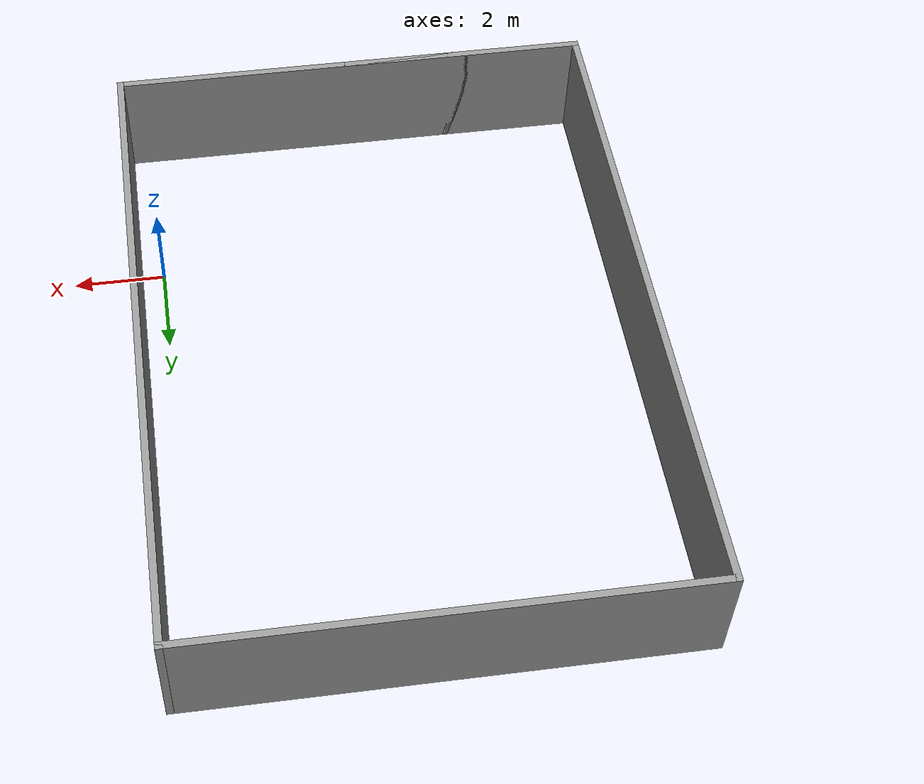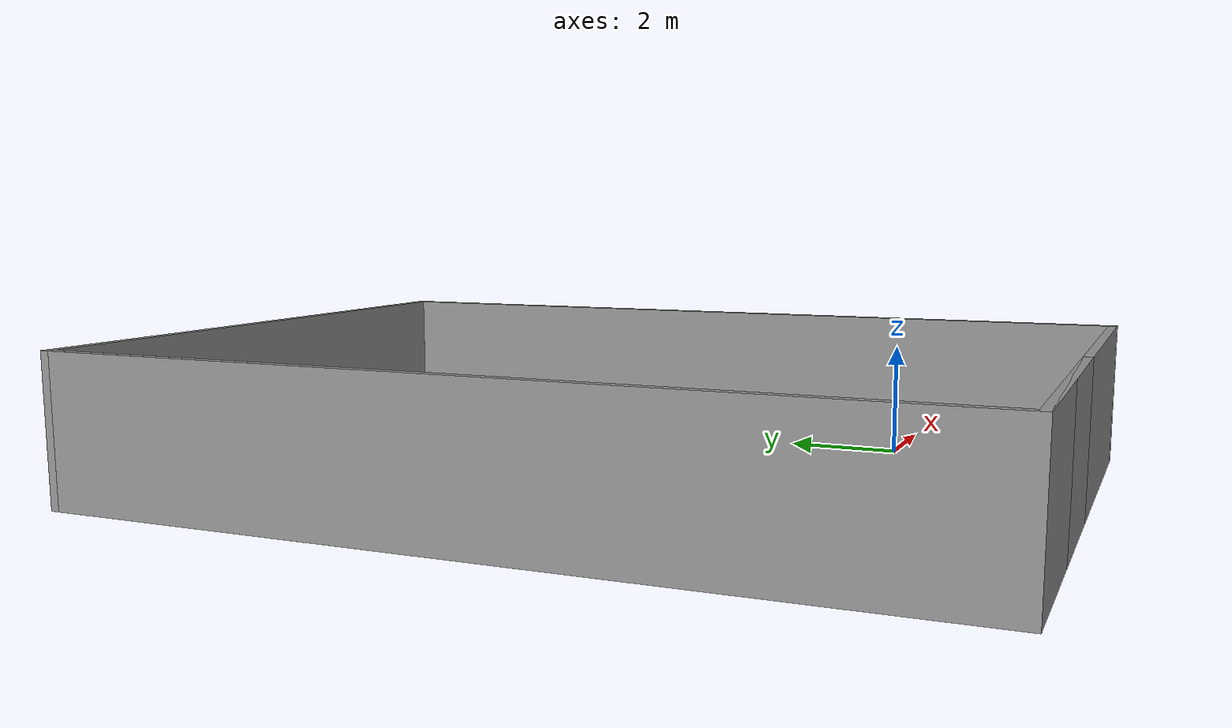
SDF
<?xml version='1.0'?>
<sdf version='1.6'>
  <model name='Untitled'>
    <pose frame=''>-4.74 3.52 0 0 -0 0</pose>
    <link name='Wall_0'>
      <collision name='Wall_0_Collision'>
        <geometry>
          <box>
            <size>5.5 0.15 2.5</size>
          </box>
        </geometry>
        <pose frame=''>0 0 1.25 0 -0 0</pose>
      </collision>
      <visual name='Wall_0_Visual'>
        <pose frame=''>0 0 1.25 0 -0 0</pose>
        <geometry>
          <box>
            <size>5.5 0.15 2.5</size>
          </box>
        </geometry>
        <material>
          <script>
            <uri>file://media/materials/scripts/gazebo.material</uri>
            <name>Gazebo/Grey</name>
          </script>
          <ambient>1 1 1 1</ambient>
        </material>
        <meta>
          <layer>0</layer>
        </meta>
      </visual>
      <pose frame=''>-2.625 -7.3 0 0 -0 3.14159</pose>
    </link>
    <link name='Wall_1'>
      <collision name='Wall_1_Collision'>
        <geometry>
          <box>
            <size>10.75 0.15 2.5</size>
          </box>
        </geometry>
        <pose frame=''>0 0 1.25 0 -0 0</pose>
      </collision>
      <visual name='Wall_1_Visual'>
        <pose frame=''>0 0 1.25 0 -0 0</pose>
        <geometry>
          <box>
            <size>10.75 0.15 2.5</size>
          </box>
        </geometry>
        <material>
          <script>
            <uri>file://media/materials/scripts/gazebo.material</uri>
            <name>Gazebo/Grey</name>
          </script>
          <ambient>1 1 1 1</ambient>
        </material>
        <meta>
          <layer>0</layer>
        </meta>
      </visual>
      <pose frame=''>0 -7.3 0 0 -0 0</pose>
    </link>
    <link name='Wall_2'>
      <collision name='Wall_2_Collision'>
        <geometry>
          <box>
            <size>14.75 0.15 2.5</size>
          </box>
        </geometry>
        <pose frame=''>0 0 1.25 0 -0 0</pose>
      </collision>
      <visual name='Wall_2_Visual'>
        <pose frame=''>0 0 1.25 0 -0 0</pose>
        <geometry>
          <box>
            <size>14.75 0.15 2.5</size>
          </box>
        </geometry>
        <material>
          <script>
            <uri>file://media/materials/scripts/gazebo.material</uri>
            <name>Gazebo/Grey</name>
          </script>
          <ambient>1 1 1 1</ambient>
        </material>
        <meta>
          <layer>0</layer>
        </meta>
      </visual>
      <pose frame=''>5.3 0 0 0 -0 1.5708</pose>
    </link>
    <link name='Wall_3'>
      <collision name='Wall_3_Collision'>
        <geometry>
          <box>
            <size>10.75 0.15 2.5</size>
          </box>
        </geometry>
        <pose frame=''>0 0 1.25 0 -0 0</pose>
      </collision>
      <visual name='Wall_3_Visual'>
        <pose frame=''>0 0 1.25 0 -0 0</pose>
        <geometry>
          <box>
            <size>10.75 0.15 2.5</size>
          </box>
        </geometry>
        <material>
          <script>
            <uri>file://media/materials/scripts/gazebo.material</uri>
            <name>Gazebo/Grey</name>
          </script>
          <ambient>1 1 1 1</ambient>
        </material>
        <meta>
          <layer>0</layer>
        </meta>
      </visual>
      <pose frame=''>0 7.3 0 0 -0 3.14159</pose>
    </link>
    <link name='Wall_4'>
      <collision name='Wall_4_Collision'>
        <geometry>
          <box>
            <size>14.75 0.15 2.5</size>
          </box>
        </geometry>
        <pose frame=''>0 0 1.25 0 -0 0</pose>
      </collision>
      <visual name='Wall_4_Visual'>
        <pose frame=''>0 0 1.25 0 -0 0</pose>
        <geometry>
          <box>
            <size>14.75 0.15 2.5</size>
          </box>
        </geometry>
        <material>
          <script>
            <uri>file://media/materials/scripts/gazebo.material</uri>
            <name>Gazebo/Grey</name>
          </script>
          <ambient>1 1 1 1</ambient>
        </material>
        <meta>
          <layer>0</layer>
        </meta>
      </visual>
      <pose frame=''>-5.3 0 0 0 -0 -1.5708</pose>
    </link>
    <static>1</static>
  </model>
</sdf>
